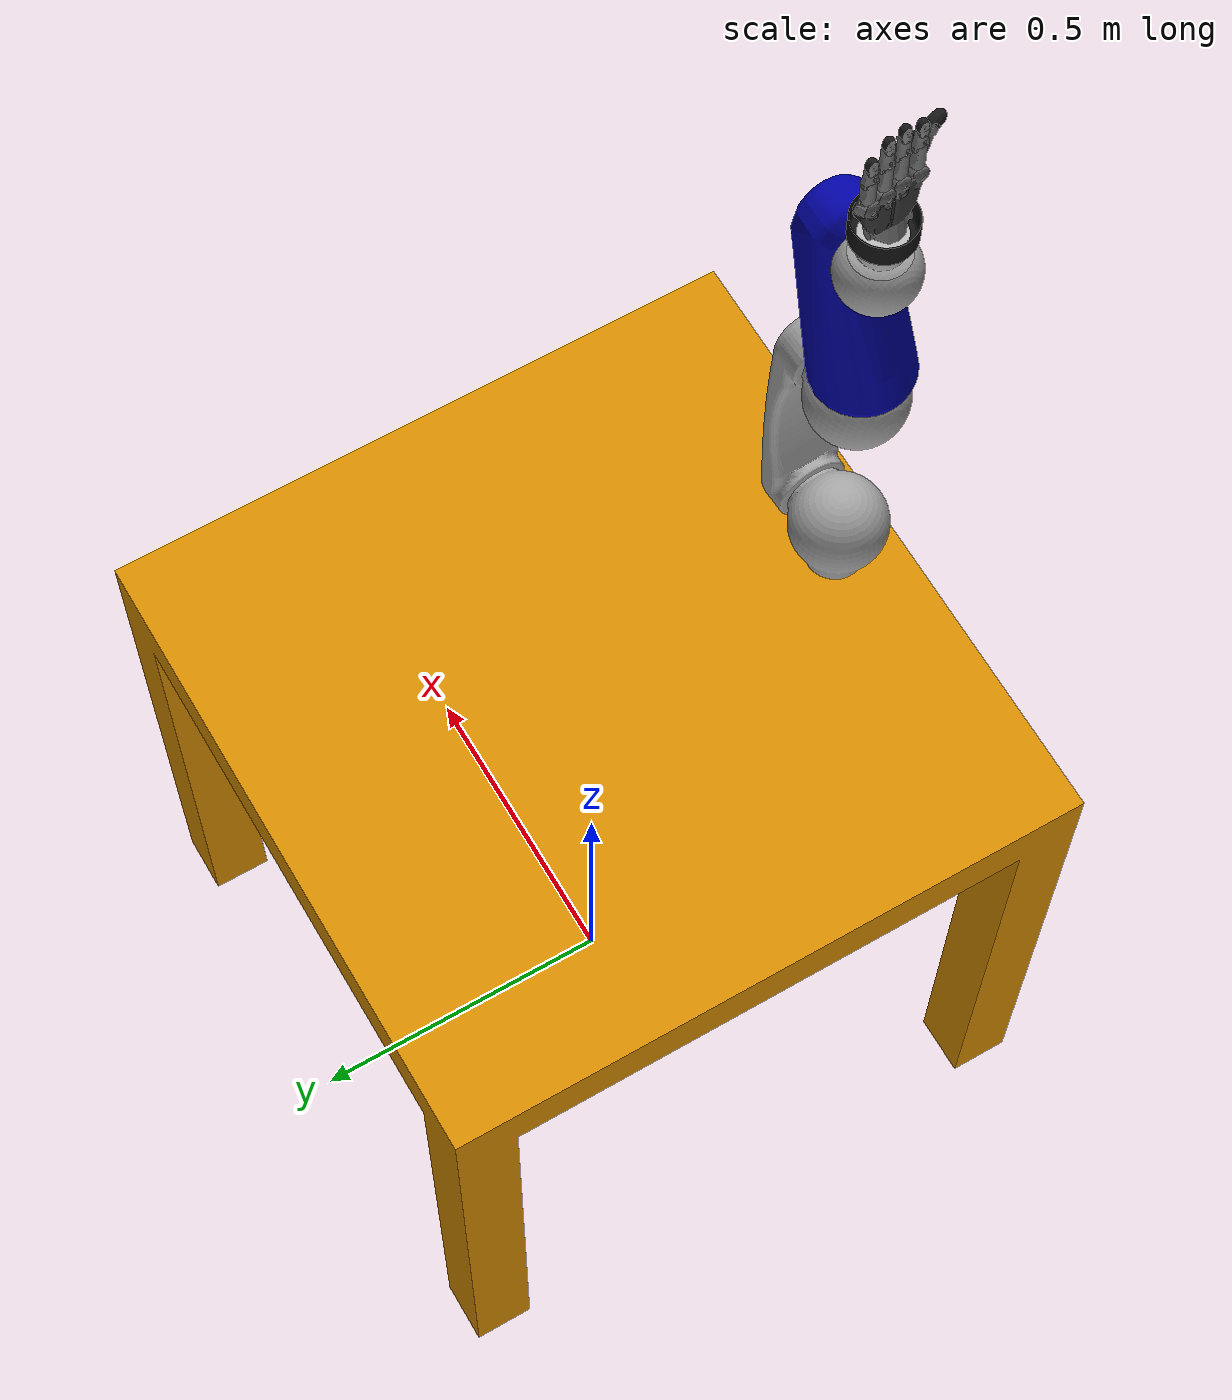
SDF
<sdf version="1.5">
 <model name="HoLLiE">
  <link name="base_link">
   <inertial>
    <mass>1000</mass>
    <inertia><ixx>100</ixx><ixy>0</ixy><ixz>1</ixz><iyy>100</iyy><iyz>1</iyz><izz>100</izz></inertia>
   </inertial>
   <collision name="base_link_collision">
    <pose>0 0 0.5 0 0 0</pose>
    <geometry>
     <mesh><scale>1 1 1</scale><uri>model://arm_robot-mit_VISCOL/collisions/COL_Table.dae</uri></mesh>
    </geometry>
   </collision>
   <collision name="base_link_collision_1">
    <pose>0 0 0.5 0 0 0</pose>
    <geometry>
     <mesh><scale>1 1 1</scale><uri>model://arm_robot-mit_VISCOL/collisions/COL_Table.001.dae</uri></mesh>
    </geometry>
   </collision>
   <collision name="base_link_collision_2">
    <pose>0 0 0.5 0 0 0</pose>
    <geometry>
     <mesh><scale>1 1 1</scale><uri>model://arm_robot-mit_VISCOL/collisions/COL_Table.000.dae</uri></mesh>
    </geometry>
   </collision>
   <visual name="base_link_visual">
    <pose>0 0 0.5 0 0 0</pose>
    <geometry>
     <mesh><scale>1 1 1</scale><uri>model://arm_robot-mit_VISCOL/meshes/VIS_Table.dae</uri></mesh>
    </geometry>
   </visual>
  </link>
  <link name="hollie_real_left_arm">
   <pose>0 -0.4 1 0 0 1.62316</pose>
   <inertial>
    <mass>0.29364</mass>
    <inertia><ixx>0.01</ixx><ixy>0</ixy><ixz>0</ixz><iyy>0.01</iyy><iyz>0</iyz><izz>0.01</izz></inertia>
   </inertial>
  </link>
  <joint name="hollie_real_left_arm_joint" type="prismatic">
   <child>hollie_real_left_arm</child>
   <parent>base_link</parent>
   <axis>
    <xyz>-0.0523359 0.99863 0</xyz>
    <limit><lower>0</lower><upper>0</upper><effort>1000</effort><velocity>1</velocity></limit>
    <dynamics>
     <damping>1</damping>
     <friction>0</friction>
     <spring_reference>0</spring_reference>
     <spring_stiffness>0</spring_stiffness>
    </dynamics>
    <use_parent_model_frame>1</use_parent_model_frame>
   </axis>
  </joint>
  <link name="hollie_real.000">
   <pose>0 -0.4 1.11 0 0 1.62316</pose>
   <inertial>
    <mass>0.29364</mass>
    <inertia><ixx>0.01</ixx><ixy>0</ixy><ixz>0</ixz><iyy>0.01</iyy><iyz>0</iyz><izz>0.01</izz></inertia>
   </inertial>
   <collision name="hollie_real.000_collision">
    <pose>3.51042e-08 9.9303e-08 1.19209e-06 0 0 0</pose>
    <geometry>
     <mesh><scale>1 1 1</scale><uri>model://arm_robot-mit_VISCOL/collisions/COL_hollie_real.000.dae</uri></mesh>
    </geometry>
   </collision>
   <visual name="hollie_real.000_visual">
    <pose>3.51042e-08 9.9303e-08 1.19209e-06 -2.10125e-07 1.15808e-08 -1.56462e-07</pose>
    <geometry>
     <mesh><scale>1 1 1</scale><uri>model://arm_robot-mit_VISCOL/meshes/VIS_hollie_real.000.dae</uri></mesh>
    </geometry>
   </visual>
  </link>
  <joint name="hollie_real_left_arm_1_joint" type="revolute">
   <child>hollie_real.000</child>
   <parent>hollie_real_left_arm</parent>
   <axis>
    <xyz>0 0 1</xyz>
    <limit>
     <lower>-1.37255e+20</lower>
     <upper>1.37255e+20</upper>
     <effort>1000</effort>
     <velocity>10</velocity>
    </limit>
    <dynamics>
     <damping>1</damping>
     <friction>0</friction>
     <spring_reference>0</spring_reference>
     <spring_stiffness>0</spring_stiffness>
    </dynamics>
    <use_parent_model_frame>1</use_parent_model_frame>
   </axis>
  </joint>
  <link name="hollie_real.001">
   <pose>0 -0.4 1.11 1.5708 0 1.62316</pose>
   <inertial>
    <mass>1.68311</mass>
    <inertia><ixx>0.03</ixx><ixy>0</ixy><ixz>0</ixz><iyy>0.03</iyy><iyz>0</iyz><izz>0.03</izz></inertia>
   </inertial>
   <collision name="hollie_real.001_collision">
    <pose>-2.54185e-08 1.432e-06 -4.74719e-09 0 0 0</pose>
    <geometry>
     <mesh><scale>1 1 1</scale><uri>model://arm_robot-mit_VISCOL/collisions/COL_hollie_real.001.dae</uri></mesh>
    </geometry>
   </collision>
   <visual name="hollie_real.001_visual">
    <pose>-2.54185e-08 1.432e-06 -4.74719e-09 -7.54979e-08 4.84288e-08 5.42987e-08</pose>
    <geometry>
     <mesh><scale>1 1 1</scale><uri>model://arm_robot-mit_VISCOL/meshes/VIS_hollie_real.001.dae</uri></mesh>
    </geometry>
   </visual>
  </link>
  <joint name="hollie_real_left_arm_2_joint" type="revolute">
   <child>hollie_real.001</child>
   <parent>hollie_real.000</parent>
   <axis>
    <xyz>0.99863 0.0523359 -4.37114e-08</xyz>
    <limit><lower>-2864.79</lower><upper>2864.79</upper><effort>1000</effort><velocity>1</velocity></limit>
    <dynamics>
     <damping>1</damping>
     <friction>0</friction>
     <spring_reference>0</spring_reference>
     <spring_stiffness>0</spring_stiffness>
    </dynamics>
    <use_parent_model_frame>1</use_parent_model_frame>
   </axis>
  </joint>
  <link name="hollie_real.002">
   <pose>1.5278e-08 -0.4 1.46 1.5708 6.77236e-15 -1.51844</pose>
   <inertial>
    <mass>2.1</mass>
    <inertia><ixx>0.03</ixx><ixy>0</ixy><ixz>0</ixz><iyy>0.03</iyy><iyz>0</iyz><izz>0.03</izz></inertia>
   </inertial>
   <collision name="hollie_real.002_collision">
    <pose>-1.55538e-07 9.55162e-07 1.14359e-08 0 0 0</pose>
    <geometry>
     <mesh><scale>1 1 1</scale><uri>model://arm_robot-mit_VISCOL/collisions/COL_hollie_real.002.dae</uri></mesh>
    </geometry>
   </collision>
   <visual name="hollie_real.002_visual">
    <pose>-1.55538e-07 9.55162e-07 1.14359e-08 4.37113e-08 4.09782e-07 -1.73467e-07</pose>
    <geometry>
     <mesh><scale>1 1 1</scale><uri>model://arm_robot-mit_VISCOL/meshes/VIS_hollie_real.002.dae</uri></mesh>
    </geometry>
   </visual>
  </link>
  <joint name="hollie_real_left_arm_3_joint" type="revolute">
   <child>hollie_real.002</child>
   <parent>hollie_real.001</parent>
   <axis>
    <xyz>-0.99863 -0.0523361 4.37114e-08</xyz>
    <limit>
     <lower>-1.36749e+20</lower>
     <upper>1.36749e+20</upper>
     <effort>1000</effort>
     <velocity>10</velocity>
    </limit>
    <dynamics>
     <damping>1</damping>
     <friction>0</friction>
     <spring_reference>0</spring_reference>
     <spring_stiffness>0</spring_stiffness>
    </dynamics>
    <use_parent_model_frame>1</use_parent_model_frame>
   </axis>
  </joint>
  <link name="hollie_real.003">
   <pose>1.5278e-08 -0.4 1.46 8.74228e-08 -1.50996e-07 1.62316</pose>
   <inertial>
    <mass>1.68311</mass>
    <inertia><ixx>0.1</ixx><ixy>0.1</ixy><ixz>0.1</ixz><iyy>0.1</iyy><iyz>0.1</iyz><izz>0.1</izz></inertia>
   </inertial>
   <collision name="hollie_real.003_collision">
    <pose>5.1084e-08 -1.46347e-07 1.74725e-07 0 0 0</pose>
    <geometry>
     <mesh><scale>1 1 1</scale><uri>model://arm_robot-mit_VISCOL/collisions/COL_hollie_real.003.dae</uri></mesh>
    </geometry>
   </collision>
   <visual name="hollie_real.003_visual">
    <pose>5.1084e-08 -1.46347e-07 1.74725e-07 1.54785e-07 3.0945e-09 -2.12342e-07</pose>
    <geometry>
     <mesh><scale>1 1 1</scale><uri>model://arm_robot-mit_VISCOL/meshes/VIS_hollie_real.003.dae</uri></mesh>
    </geometry>
   </visual>
  </link>
  <joint name="hollie_real_left_arm_4_joint" type="revolute">
   <child>hollie_real.003</child>
   <parent>hollie_real.002</parent>
   <axis>
    <xyz>9.52055e-08 -1.46214e-07 1</xyz>
    <limit>
     <lower>-4.52188e+19</lower>
     <upper>4.52188e+19</upper>
     <effort>1000</effort>
     <velocity>10</velocity>
    </limit>
    <dynamics>
     <damping>1</damping>
     <friction>0</friction>
     <spring_reference>0</spring_reference>
     <spring_stiffness>0</spring_stiffness>
    </dynamics>
    <use_parent_model_frame>1</use_parent_model_frame>
   </axis>
  </joint>
  <link name="hollie_real.004">
   <pose>-0.00525574 -0.400275 1.765 1.5708 1.50996e-07 -1.51844</pose>
   <inertial>
    <mass>0.807</mass>
    <inertia><ixx>0.03</ixx><ixy>0</ixy><ixz>0</ixz><iyy>0.03</iyy><iyz>0</iyz><izz>0.03</izz></inertia>
   </inertial>
   <collision name="hollie_real.004_collision">
    <pose>-1.87833e-07 6.52579e-07 -6.23986e-08 0 0 0</pose>
    <geometry>
     <mesh><scale>1 1 1</scale><uri>model://arm_robot-mit_VISCOL/collisions/COL_hollie_real.004.dae</uri></mesh>
    </geometry>
   </collision>
   <visual name="hollie_real.004_visual">
    <pose>-1.87833e-07 6.52579e-07 -6.23986e-08 1.47422e-06 -1.69501e-06 -1.44053e-07</pose>
    <geometry>
     <mesh><scale>1 1 1</scale><uri>model://arm_robot-mit_VISCOL/meshes/VIS_hollie_real.004.dae</uri></mesh>
    </geometry>
   </visual>
  </link>
  <joint name="hollie_real_left_arm_5_joint" type="revolute">
   <child>hollie_real.004</child>
   <parent>hollie_real.003</parent>
   <axis>
    <xyz>-0.99863 -0.0523362 4.37114e-08</xyz>
    <limit>
     <lower>-1.36749e+20</lower>
     <upper>1.36749e+20</upper>
     <effort>1000</effort>
     <velocity>1</velocity>
    </limit>
    <dynamics>
     <damping>1</damping>
     <friction>0</friction>
     <spring_reference>0</spring_reference>
     <spring_stiffness>0</spring_stiffness>
    </dynamics>
    <use_parent_model_frame>1</use_parent_model_frame>
   </axis>
  </joint>
  <link name="hollie_real.005">
   <pose>-0.00525574 -0.400275 1.765 -8.74228e-08 1.50996e-07 -1.51844</pose>
   <inertial>
    <mass>0.819</mass>
    <inertia><ixx>0.01</ixx><ixy>0</ixy><ixz>0</ixz><iyy>0.01</iyy><iyz>0</iyz><izz>0.01</izz></inertia>
   </inertial>
   <collision name="hollie_real.005_collision">
    <pose>-4.52224e-08 3.3062e-07 1.35905e-06 0 0 0</pose>
    <geometry>
     <mesh><scale>1 1 1</scale><uri>model://arm_robot-mit_VISCOL/collisions/COL_hollie_real.005.dae</uri></mesh>
    </geometry>
   </collision>
   <visual name="hollie_real.005_visual">
    <pose>-4.52224e-08 3.3062e-07 1.35905e-06 1.28805e-07 -3.81088e-11 4.54485e-07</pose>
    <geometry>
     <mesh><scale>1 1 1</scale><uri>model://arm_robot-mit_VISCOL/meshes/VIS_hollie_real.005.dae</uri></mesh>
    </geometry>
   </visual>
  </link>
  <joint name="hollie_real_left_arm_6_joint" type="revolute">
   <child>hollie_real.005</child>
   <parent>hollie_real.004</parent>
   <axis>
    <xyz>9.52055e-08 -1.46214e-07 1</xyz>
    <limit>
     <lower>-4.52188e+19</lower>
     <upper>4.52188e+19</upper>
     <effort>1000</effort>
     <velocity>1</velocity>
    </limit>
    <dynamics>
     <damping>1</damping>
     <friction>0</friction>
     <spring_reference>0</spring_reference>
     <spring_stiffness>0</spring_stiffness>
    </dynamics>
    <use_parent_model_frame>1</use_parent_model_frame>
   </axis>
  </joint>
  <link name="hollie_real.006">
   <pose>-0.00525573 -0.400276 1.865 -8.74228e-08 1.50996e-07 -1.51844</pose>
   <inertial>
    <mass>0.00001</mass>
    <inertia><ixx>0.01</ixx><ixy>0</ixy><ixz>0</ixz><iyy>0.01</iyy><iyz>0</iyz><izz>0.01</izz></inertia>
   </inertial>
   <collision name="hollie_real.006_collision">
    <pose>-1.68576e-07 9.89996e-07 -0.0319981 0 0 0</pose>
    <geometry>
     <mesh><scale>1 1 1</scale><uri>model://arm_robot-mit_VISCOL/collisions/COL_hollie_real.006.dae</uri></mesh>
    </geometry>
   </collision>
   <visual name="hollie_real.006_visual">
    <pose>-1.68576e-07 9.89996e-07 -0.0319981 -5.19103e-08 -7.89563e-10 2.16067e-07</pose>
    <geometry>
     <mesh><scale>1 1 1</scale><uri>model://arm_robot-mit_VISCOL/meshes/VIS_hollie_real.006.dae</uri></mesh>
    </geometry>
   </visual>
  </link>
  <joint name="hollie_real_left_hand_base_joint" type="prismatic">
   <child>hollie_real.006</child>
   <parent>hollie_real.005</parent>
   <axis>
    <xyz>0.0523362 -0.99863 -1.50996e-07</xyz>
    <limit><lower>0</lower><upper>0</upper><effort>1000</effort><velocity>1</velocity></limit>
    <dynamics>
     <damping>1</damping>
     <friction>0</friction>
     <spring_reference>0</spring_reference>
     <spring_stiffness>0</spring_stiffness>
    </dynamics>
    <use_parent_model_frame>1</use_parent_model_frame>
   </axis>
  </joint>
  <link name="hollie_real.007">
   <pose>-0.0183677 -0.400963 1.865 -8.74228e-08 1.50996e-07 -1.51844</pose>
   <inertial>
    <mass>0.00001</mass>
    <inertia><ixx>0.01</ixx><ixy>0</ixy><ixz>0</ixz><iyy>0.01</iyy><iyz>0</iyz><izz>0.01</izz></inertia>
   </inertial>
   <collision name="hollie_real.007_collision">
    <pose>-6.60936e-08 0.0131302 2.0743e-06 0 0 0</pose>
    <geometry>
     <mesh><scale>1 1 1</scale><uri>model://arm_robot-mit_VISCOL/collisions/COL_hollie_real.007.dae</uri></mesh>
    </geometry>
   </collision>
   <visual name="hollie_real.007_visual">
    <pose>-6.60936e-08 0.0131302 2.0743e-06 3.14159 2.29074e-07 -6.18398e-07</pose>
    <geometry>
     <mesh><scale>1 1 1</scale><uri>model://arm_robot-mit_VISCOL/meshes/VIS_hollie_real.007.dae</uri></mesh>
    </geometry>
   </visual>
  </link>
  <joint name="hollie_real_left_hand_f4" type="prismatic">
   <child>hollie_real.007</child>
   <parent>hollie_real.006</parent>
   <axis>
    <xyz>0.0523362 -0.99863 -1.50996e-07</xyz>
    <limit><lower>0</lower><upper>0</upper><effort>1000</effort><velocity>1</velocity></limit>
    <dynamics>
     <damping>1</damping>
     <friction>0</friction>
     <spring_reference>0</spring_reference>
     <spring_stiffness>0</spring_stiffness>
    </dynamics>
    <use_parent_model_frame>1</use_parent_model_frame>
   </axis>
  </joint>
  <link name="hollie_real.008">
   <pose>0.00874075 -0.416465 1.865 1.56322e-07 0.261799 0.0523602</pose>
   <inertial>
    <mass>0.00001</mass>
    <inertia><ixx>0.01</ixx><ixy>0</ixy><ixz>0</ixz><iyy>0.01</iyy><iyz>0</iyz><izz>0.01</izz></inertia>
   </inertial>
   <collision name="hollie_real.008_collision">
    <pose>2.58908e-07 -7.39136e-07 0.0244181 0 0 0</pose>
    <geometry>
     <mesh><scale>1 1 1</scale><uri>model://arm_robot-mit_VISCOL/collisions/COL_hollie_real.008.dae</uri></mesh>
    </geometry>
   </collision>
   <visual name="hollie_real.008_visual">
    <pose>2.58908e-07 -7.39136e-07 0.0244181 3.14159 2.7736e-06 3.14159</pose>
    <geometry>
     <mesh><scale>1 1 1</scale><uri>model://arm_robot-mit_VISCOL/meshes/VIS_hollie_real.008.dae</uri></mesh>
    </geometry>
   </visual>
  </link>
  <joint name="hollie_real_left_hand_Thumb_Opposition" type="revolute">
   <child>hollie_real.008</child>
   <parent>hollie_real.007</parent>
   <axis>
    <xyz>0.258464 0.0135455 0.965926</xyz>
    <limit><lower>0</lower><upper>2.15805e+19</upper><effort>1000</effort><velocity>1</velocity></limit>
    <dynamics>
     <damping>1</damping>
     <friction>0</friction>
     <spring_reference>0</spring_reference>
     <spring_stiffness>0</spring_stiffness>
    </dynamics>
    <use_parent_model_frame>1</use_parent_model_frame>
   </axis>
  </joint>
  <link name="hollie_real_left_hand_Thumb_Helper_link">
   <pose>0.0206198 -0.415843 1.90939 -3.14159 -1.309 0.0523596</pose>
   <inertial>
    <mass>0.00001</mass>
    <inertia><ixx>0.01</ixx><ixy>0</ixy><ixz>0</ixz><iyy>0.01</iyy><iyz>0</iyz><izz>0.01</izz></inertia>
   </inertial>
  </link>
  <joint name="hollie_real_left_hand_Thumb_Helper" type="prismatic">
   <child>hollie_real_left_hand_Thumb_Helper_link</child>
   <parent>hollie_real.008</parent>
   <axis>
    <xyz>0.258465 0.0135455 0.965926</xyz>
    <limit><lower>0</lower><upper>0</upper><effort>1000</effort><velocity>1</velocity></limit>
    <dynamics>
     <damping>1</damping>
     <friction>0</friction>
     <spring_reference>0</spring_reference>
     <spring_stiffness>0</spring_stiffness>
    </dynamics>
    <use_parent_model_frame>1</use_parent_model_frame>
   </axis>
  </joint>
  <link name="hollie_real.009">
   <pose>0.0206198 -0.415843 1.90939 -1.8834 -0.570602 -1.3456</pose>
   <inertial>
    <mass>0.00001</mass>
    <inertia><ixx>0.01</ixx><ixy>0</ixy><ixz>0</ixz><iyy>0.01</iyy><iyz>0</iyz><izz>0.01</izz></inertia>
   </inertial>
   <collision name="hollie_real.009_collision">
    <pose>1.18185e-06 1.32481e-07 -2.5332e-07 0 0 0</pose>
    <geometry>
     <mesh><scale>1 1 1</scale><uri>model://arm_robot-mit_VISCOL/collisions/COL_hollie_real.009.dae</uri></mesh>
    </geometry>
   </collision>
   <visual name="hollie_real.009_visual">
    <pose>1.18185e-06 1.32481e-07 -2.5332e-07 -3.14159 3.241e-07 1.06171e-06</pose>
    <geometry>
     <mesh><scale>1 1 1</scale><uri>model://arm_robot-mit_VISCOL/meshes/VIS_hollie_real.009.dae</uri></mesh>
    </geometry>
   </visual>
  </link>
  <joint name="hollie_real_left_hand_Thumb_Flexion" type="revolute">
   <child>hollie_real.009</child>
   <parent>hollie_real_left_hand_Thumb_Helper_link</parent>
   <axis>
    <xyz>0.964602 0.0505532 -0.258819</xyz>
    <limit><lower>-5</lower><upper>2.11982e+19</upper><effort>1000</effort><velocity>1</velocity></limit>
    <dynamics>
     <damping>1</damping>
     <friction>0</friction>
     <spring_reference>0</spring_reference>
     <spring_stiffness>0</spring_stiffness>
    </dynamics>
    <use_parent_model_frame>1</use_parent_model_frame>
   </axis>
  </joint>
  <link name="hollie_real.010">
   <pose>0.0297339 -0.455628 1.93559 -1.8834 -0.570602 -1.3456</pose>
   <inertial>
    <mass>0.00001</mass>
    <inertia><ixx>0.01</ixx><ixy>0</ixy><ixz>0</ixz><iyy>0.01</iyy><iyz>0</iyz><izz>0.01</izz></inertia>
   </inertial>
   <collision name="hollie_real.010_collision">
    <pose>-6.49597e-07 -1.02399e-06 4.787e-07 0 0 0</pose>
    <geometry>
     <mesh><scale>1 1 1</scale><uri>model://arm_robot-mit_VISCOL/collisions/COL_hollie_real.010.dae</uri></mesh>
    </geometry>
   </collision>
   <visual name="hollie_real.010_visual">
    <pose>-6.49597e-07 -1.02399e-06 4.787e-07 3.14159 -1.11759e-08 1.9148e-06</pose>
    <geometry>
     <mesh><scale>1 1 1</scale><uri>model://arm_robot-mit_VISCOL/meshes/VIS_hollie_real.010.dae</uri></mesh>
    </geometry>
   </visual>
  </link>
  <joint name="hollie_real_left_hand_j3" type="revolute">
   <child>hollie_real.010</child>
   <parent>hollie_real.009</parent>
   <axis>
    <xyz>0.964602 0.0505532 -0.258819</xyz>
    <limit><lower>-5</lower><upper>0</upper><effort>1000</effort><velocity>1</velocity></limit>
    <dynamics>
     <damping>1</damping>
     <friction>0</friction>
     <spring_reference>0</spring_reference>
     <spring_stiffness>0</spring_stiffness>
    </dynamics>
    <use_parent_model_frame>1</use_parent_model_frame>
   </axis>
  </joint>
  <link name="hollie_real.011">
   <pose>0.0353715 -0.480238 1.95179 -1.8834 -0.570602 -1.3456</pose>
   <inertial>
    <mass>0.00001</mass>
    <inertia><ixx>0.01</ixx><ixy>0</ixy><ixz>0</ixz><iyy>0.01</iyy><iyz>0</iyz><izz>0.01</izz></inertia>
   </inertial>
   <collision name="hollie_real.011_collision">
    <pose>-7.49715e-08 -2.47732e-07 -7.45058e-08 0 0 0</pose>
    <geometry>
     <mesh><scale>1 1 1</scale><uri>model://arm_robot-mit_VISCOL/collisions/COL_hollie_real.011.dae</uri></mesh>
    </geometry>
   </collision>
   <visual name="hollie_real.011_visual">
    <pose>-7.49715e-08 -2.47732e-07 -7.45058e-08 3.14159 4.84288e-08 1.67266e-06</pose>
    <geometry>
     <mesh><scale>1 1 1</scale><uri>model://arm_robot-mit_VISCOL/meshes/VIS_hollie_real.011.dae</uri></mesh>
    </geometry>
   </visual>
  </link>
  <joint name="hollie_real_left_hand_j4" type="revolute">
   <child>hollie_real.011</child>
   <parent>hollie_real.010</parent>
   <axis>
    <xyz>0.964602 0.0505532 -0.258819</xyz>
    <limit><lower>0</lower><upper>3.07139e+19</upper><effort>1000</effort><velocity>1</velocity></limit>
    <dynamics>
     <damping>1</damping>
     <friction>0</friction>
     <spring_reference>0</spring_reference>
     <spring_stiffness>0</spring_stiffness>
    </dynamics>
    <use_parent_model_frame>1</use_parent_model_frame>
   </axis>
  </joint>
  <link name="hollie_real_left_hand_f1_link">
   <pose>-0.0183677 -0.400963 1.865 -8.74228e-08 1.50996e-07 -1.51844</pose>
   <inertial>
    <mass>0.00001</mass>
    <inertia><ixx>0.01</ixx><ixy>0</ixy><ixz>0</ixz><iyy>0.01</iyy><iyz>0</iyz><izz>0.01</izz></inertia>
   </inertial>
  </link>
  <joint name="hollie_real_left_hand_f1" type="prismatic">
   <child>hollie_real_left_hand_f1_link</child>
   <parent>hollie_real.007</parent>
   <axis>
    <xyz>0.0523362 -0.99863 -1.50996e-07</xyz>
    <limit><lower>0</lower><upper>0</upper><effort>1000</effort><velocity>1</velocity></limit>
    <dynamics>
     <damping>1</damping>
     <friction>0</friction>
     <spring_reference>0</spring_reference>
     <spring_stiffness>0</spring_stiffness>
    </dynamics>
    <use_parent_model_frame>1</use_parent_model_frame>
   </axis>
  </joint>
  <link name="hollie_real_left_hand_f2_link">
   <pose>-0.0183677 -0.400963 1.865 -8.74228e-08 1.50996e-07 -1.51844</pose>
   <inertial>
    <mass>0.00001</mass>
    <inertia><ixx>0.01</ixx><ixy>0</ixy><ixz>0</ixz><iyy>0.01</iyy><iyz>0</iyz><izz>0.01</izz></inertia>
   </inertial>
  </link>
  <joint name="hollie_real_left_hand_f2" type="prismatic">
   <child>hollie_real_left_hand_f2_link</child>
   <parent>hollie_real_left_hand_f1_link</parent>
   <axis>
    <xyz>0.0523362 -0.99863 -1.50996e-07</xyz>
    <limit><lower>0</lower><upper>0</upper><effort>1000</effort><velocity>1</velocity></limit>
    <dynamics>
     <damping>1</damping>
     <friction>0</friction>
     <spring_reference>0</spring_reference>
     <spring_stiffness>0</spring_stiffness>
    </dynamics>
    <use_parent_model_frame>1</use_parent_model_frame>
   </axis>
  </joint>
  <link name="hollie_real_left_hand_f3_link">
   <pose>-0.0183677 -0.400963 1.865 -8.74228e-08 1.50996e-07 -1.51844</pose>
   <inertial>
    <mass>0.00001</mass>
    <inertia><ixx>0.01</ixx><ixy>0</ixy><ixz>0</ixz><iyy>0.01</iyy><iyz>0</iyz><izz>0.01</izz></inertia>
   </inertial>
  </link>
  <joint name="hollie_real_left_hand_f3" type="prismatic">
   <child>hollie_real_left_hand_f3_link</child>
   <parent>hollie_real_left_hand_f2_link</parent>
   <axis>
    <xyz>0.0523362 -0.99863 -1.50996e-07</xyz>
    <limit><lower>0</lower><upper>0</upper><effort>1000</effort><velocity>1</velocity></limit>
    <dynamics>
     <damping>1</damping>
     <friction>0</friction>
     <spring_reference>0</spring_reference>
     <spring_stiffness>0</spring_stiffness>
    </dynamics>
    <use_parent_model_frame>1</use_parent_model_frame>
   </axis>
  </joint>
  <link name="hollie_real.012">
   <pose>-0.0170593 -0.425928 1.975 -1.93916 -1.57079 1.99152</pose>
   <inertial>
    <mass>0.00001</mass>
    <inertia><ixx>0.01</ixx><ixy>0</ixy><ixz>0</ixz><iyy>0.01</iyy><iyz>0</iyz><izz>0.01</izz></inertia>
   </inertial>
   <collision name="hollie_real.012_collision">
    <pose>2.83714e-07 -1.80779e-07 0.0132102 0 0 0</pose>
    <geometry>
     <mesh><scale>1 1 1</scale><uri>model://arm_robot-mit_VISCOL/collisions/COL_hollie_real.012.dae</uri></mesh>
    </geometry>
   </collision>
   <visual name="hollie_real.012_visual">
    <pose>2.83714e-07 -1.80779e-07 0.0132102 3.72529e-09 4.7521e-07 9.03022e-08</pose>
    <geometry>
     <mesh><scale>1 1 1</scale><uri>model://arm_robot-mit_VISCOL/meshes/VIS_hollie_real.012.dae</uri></mesh>
    </geometry>
   </visual>
  </link>
  <joint name="hollie_real_left_hand_index_spread" type="revolute">
   <child>hollie_real.012</child>
   <parent>hollie_real_left_hand_f3_link</parent>
   <axis>
    <xyz>-0.99863 -0.0523363 8.74227e-08</xyz>
    <limit><lower>0</lower><upper>6.29852e+18</upper><effort>1000</effort><velocity>1</velocity></limit>
    <dynamics>
     <damping>1</damping>
     <friction>0</friction>
     <spring_reference>0</spring_reference>
     <spring_stiffness>0</spring_stiffness>
    </dynamics>
    <use_parent_model_frame>1</use_parent_model_frame>
   </axis>
  </joint>
  <link name="hollie_real.013">
   <pose>-0.0170593 -0.425928 1.975 2.77323 -1.57079 1.99152</pose>
   <inertial>
    <mass>0.00001</mass>
    <inertia><ixx>0.01</ixx><ixy>0</ixy><ixz>0</ixz><iyy>0.01</iyy><iyz>0</iyz><izz>0.01</izz></inertia>
   </inertial>
   <collision name="hollie_real.013_collision">
    <pose>-5.68574e-07 4.89691e-08 1.02218e-07 0 0 0</pose>
    <geometry>
     <mesh><scale>1 1 1</scale><uri>model://arm_robot-mit_VISCOL/collisions/COL_hollie_real.013.dae</uri></mesh>
    </geometry>
   </collision>
   <visual name="hollie_real.013_visual">
    <pose>-5.68574e-07 4.89691e-08 1.02218e-07 -2.77162e-06 -6.43156e-08 7.5231e-08</pose>
    <geometry>
     <mesh><scale>1 1 1</scale><uri>model://arm_robot-mit_VISCOL/meshes/VIS_hollie_real.013.dae</uri></mesh>
    </geometry>
   </visual>
  </link>
  <joint name="hollie_real_left_hand_Index_Finger_Proximal" type="revolute">
   <child>hollie_real.013</child>
   <parent>hollie_real.012</parent>
   <axis>
    <xyz>-0.0523362 0.99863 2.26494e-07</xyz>
    <limit><lower>0</lower><upper>1.74429e+19</upper><effort>1000</effort><velocity>1</velocity></limit>
    <dynamics>
     <damping>1</damping>
     <friction>0</friction>
     <spring_reference>0</spring_reference>
     <spring_stiffness>0</spring_stiffness>
    </dynamics>
    <use_parent_model_frame>1</use_parent_model_frame>
   </axis>
  </joint>
  <link name="hollie_real.014">
   <pose>-0.0170593 -0.425928 2.02304 2.77323 -1.57079 1.99152</pose>
   <inertial>
    <mass>0.00001</mass>
    <inertia><ixx>0.01</ixx><ixy>0</ixy><ixz>0</ixz><iyy>0.01</iyy><iyz>0</iyz><izz>0.01</izz></inertia>
   </inertial>
   <collision name="hollie_real.014_collision">
    <pose>-2.52321e-08 -3.56398e-07 4.70136e-08 0 0 0</pose>
    <geometry>
     <mesh><scale>1 1 1</scale><uri>model://arm_robot-mit_VISCOL/collisions/COL_hollie_real.014.dae</uri></mesh>
    </geometry>
   </collision>
   <visual name="hollie_real.014_visual">
    <pose>-2.52321e-08 -3.56398e-07 4.70136e-08 -2.40654e-06 4.62315e-08 7.50677e-08</pose>
    <geometry>
     <mesh><scale>1 1 1</scale><uri>model://arm_robot-mit_VISCOL/meshes/VIS_hollie_real.014.dae</uri></mesh>
    </geometry>
   </visual>
  </link>
  <joint name="hollie_real_left_hand_Index_Finger_Distal" type="revolute">
   <child>hollie_real.014</child>
   <parent>hollie_real.013</parent>
   <axis>
    <xyz>-0.0523362 0.99863 2.26494e-07</xyz>
    <limit><lower>0</lower><upper>2.9141e+19</upper><effort>1000</effort><velocity>1</velocity></limit>
    <dynamics>
     <damping>1</damping>
     <friction>0</friction>
     <spring_reference>0</spring_reference>
     <spring_stiffness>0</spring_stiffness>
    </dynamics>
    <use_parent_model_frame>1</use_parent_model_frame>
   </axis>
  </joint>
  <link name="hollie_real.015">
   <pose>-0.0170593 -0.425928 2.04904 2.77323 -1.57079 1.99152</pose>
   <inertial>
    <mass>0.00001</mass>
    <inertia><ixx>0.01</ixx><ixy>0</ixy><ixz>0</ixz><iyy>0.01</iyy><iyz>0</iyz><izz>0.01</izz></inertia>
   </inertial>
   <collision name="hollie_real.015_collision">
    <pose>-2.63651e-07 1.04846e-07 -3.66848e-07 0 0 0</pose>
    <geometry>
     <mesh><scale>1 1 1</scale><uri>model://arm_robot-mit_VISCOL/collisions/COL_hollie_real.015.dae</uri></mesh>
    </geometry>
   </collision>
   <visual name="hollie_real.015_visual">
    <pose>-2.63651e-07 1.04846e-07 -3.66848e-07 -2.77162e-06 3.99925e-08 -4.39782e-08</pose>
    <geometry>
     <mesh><scale>1 1 1</scale><uri>model://arm_robot-mit_VISCOL/meshes/VIS_hollie_real.015.dae</uri></mesh>
    </geometry>
   </visual>
  </link>
  <joint name="hollie_real_left_hand_j14" type="revolute">
   <child>hollie_real.015</child>
   <parent>hollie_real.014</parent>
   <axis>
    <xyz>-0.0523362 0.99863 2.26494e-07</xyz>
    <limit><lower>0</lower><upper>3.04517e+19</upper><effort>1000</effort><velocity>1</velocity></limit>
    <dynamics>
     <damping>1</damping>
     <friction>0</friction>
     <spring_reference>0</spring_reference>
     <spring_stiffness>0</spring_stiffness>
    </dynamics>
    <use_parent_model_frame>1</use_parent_model_frame>
   </axis>
  </joint>
  <link name="hollie_real.016">
   <pose>-0.0183677 -0.400963 1.975 -1.93916 -1.57079 1.99152</pose>
   <inertial>
    <mass>0.00001</mass>
    <inertia><ixx>0.01</ixx><ixy>0</ixy><ixz>0</ixz><iyy>0.01</iyy><iyz>0</iyz><izz>0.01</izz></inertia>
   </inertial>
   <collision name="hollie_real.016_collision">
    <pose>-8.03676e-08 -9.82228e-07 0.0132101 0 0 0</pose>
    <geometry>
     <mesh><scale>1 1 1</scale><uri>model://arm_robot-mit_VISCOL/collisions/COL_hollie_real.016.dae</uri></mesh>
    </geometry>
   </collision>
   <visual name="hollie_real.016_visual">
    <pose>-8.03676e-08 -9.82228e-07 0.0132101 1.19209e-07 3.48713e-07 9.65411e-08</pose>
    <geometry>
     <mesh><scale>1 1 1</scale><uri>model://arm_robot-mit_VISCOL/meshes/VIS_hollie_real.016.dae</uri></mesh>
    </geometry>
   </visual>
  </link>
  <joint name="hollie_real_left_hand_middle_spread_dummy" type="prismatic">
   <child>hollie_real.016</child>
   <parent>hollie_real_left_hand_f1_link</parent>
   <axis>
    <xyz>9.91568e-08 -2.21608e-07 1</xyz>
    <limit><lower>0</lower><upper>0</upper><effort>1000</effort><velocity>1</velocity></limit>
    <dynamics>
     <damping>1</damping>
     <friction>0</friction>
     <spring_reference>0</spring_reference>
     <spring_stiffness>0</spring_stiffness>
    </dynamics>
    <use_parent_model_frame>1</use_parent_model_frame>
   </axis>
  </joint>
  <link name="hollie_real.017">
   <pose>-0.0183677 -0.400963 1.975 2.77323 -1.57079 1.99152</pose>
   <inertial>
    <mass>0.00001</mass>
    <inertia><ixx>0.01</ixx><ixy>0</ixy><ixz>0</ixz><iyy>0.01</iyy><iyz>0</iyz><izz>0.01</izz></inertia>
   </inertial>
   <collision name="hollie_real.017_collision">
    <pose>-9.40693e-08 1.18073e-07 -6.55762e-07 0 0 0</pose>
    <geometry>
     <mesh><scale>1 1 1</scale><uri>model://arm_robot-mit_VISCOL/collisions/COL_hollie_real.017.dae</uri></mesh>
    </geometry>
   </collision>
   <visual name="hollie_real.017_visual">
    <pose>-9.40693e-08 1.18073e-07 -6.55762e-07 5.81145e-07 -5.80766e-08 1.94277e-07</pose>
    <geometry>
     <mesh><scale>1 1 1</scale><uri>model://arm_robot-mit_VISCOL/meshes/VIS_hollie_real.017.dae</uri></mesh>
    </geometry>
   </visual>
  </link>
  <joint name="hollie_real_left_hand_Middle_Finger_Proximal" type="revolute">
   <child>hollie_real.017</child>
   <parent>hollie_real.016</parent>
   <axis>
    <xyz>-0.0523362 0.99863 2.26494e-07</xyz>
    <limit><lower>0</lower><upper>1.74429e+19</upper><effort>1000</effort><velocity>1</velocity></limit>
    <dynamics>
     <damping>1</damping>
     <friction>0</friction>
     <spring_reference>0</spring_reference>
     <spring_stiffness>0</spring_stiffness>
    </dynamics>
    <use_parent_model_frame>1</use_parent_model_frame>
   </axis>
  </joint>
  <link name="hollie_real.018">
   <pose>-0.0183677 -0.400963 2.02504 2.77323 -1.57079 1.99152</pose>
   <inertial>
    <mass>0.00001</mass>
    <inertia><ixx>0.01</ixx><ixy>0</ixy><ixz>0</ixz><iyy>0.01</iyy><iyz>0</iyz><izz>0.01</izz></inertia>
   </inertial>
   <collision name="hollie_real.018_collision">
    <pose>-1.45525e-06 6.3386e-07 -4.30643e-07 0 0 0</pose>
    <geometry>
     <mesh><scale>1 1 1</scale><uri>model://arm_robot-mit_VISCOL/collisions/COL_hollie_real.018.dae</uri></mesh>
    </geometry>
   </collision>
   <visual name="hollie_real.018_visual">
    <pose>-1.45525e-06 6.3386e-07 -4.30643e-07 2.23517e-07 4.62315e-08 7.50677e-08</pose>
    <geometry>
     <mesh><scale>1 1 1</scale><uri>model://arm_robot-mit_VISCOL/meshes/VIS_hollie_real.018.dae</uri></mesh>
    </geometry>
   </visual>
  </link>
  <joint name="hollie_real_left_hand_Middle_Finger_Distal" type="revolute">
   <child>hollie_real.018</child>
   <parent>hollie_real.017</parent>
   <axis>
    <xyz>-0.0523362 0.99863 2.26494e-07</xyz>
    <limit><lower>0</lower><upper>2.9141e+19</upper><effort>1000</effort><velocity>1</velocity></limit>
    <dynamics>
     <damping>1</damping>
     <friction>0</friction>
     <spring_reference>0</spring_reference>
     <spring_stiffness>0</spring_stiffness>
    </dynamics>
    <use_parent_model_frame>1</use_parent_model_frame>
   </axis>
  </joint>
  <link name="hollie_real.019">
   <pose>-0.0183677 -0.400963 2.05704 2.77323 -1.57079 1.99152</pose>
   <inertial>
    <mass>0.00001</mass>
    <inertia><ixx>0.01</ixx><ixy>0</ixy><ixz>0</ixz><iyy>0.01</iyy><iyz>0</iyz><izz>0.01</izz></inertia>
   </inertial>
   <collision name="hollie_real.019_collision">
    <pose>-2.47364e-08 -1.62007e-07 -7.48884e-07 0 0 0</pose>
    <geometry>
     <mesh><scale>1 1 1</scale><uri>model://arm_robot-mit_VISCOL/collisions/COL_hollie_real.019.dae</uri></mesh>
    </geometry>
   </collision>
   <visual name="hollie_real.019_visual">
    <pose>-2.47364e-08 -1.62007e-07 -7.48884e-07 -4.95464e-07 3.37536e-08 -1.63024e-07</pose>
    <geometry>
     <mesh><scale>1 1 1</scale><uri>model://arm_robot-mit_VISCOL/meshes/VIS_hollie_real.019.dae</uri></mesh>
    </geometry>
   </visual>
  </link>
  <joint name="hollie_real_left_hand_j15" type="revolute">
   <child>hollie_real.019</child>
   <parent>hollie_real.018</parent>
   <axis>
    <xyz>-0.0523362 0.99863 2.26494e-07</xyz>
    <limit><lower>0</lower><upper>2.9141e+19</upper><effort>1000</effort><velocity>1</velocity></limit>
    <dynamics>
     <damping>1</damping>
     <friction>0</friction>
     <spring_reference>0</spring_reference>
     <spring_stiffness>0</spring_stiffness>
    </dynamics>
    <use_parent_model_frame>1</use_parent_model_frame>
   </axis>
  </joint>
  <link name="hollie_real.020">
   <pose>-0.0133389 -0.382274 1.9025 -8.74228e-08 1.50996e-07 -1.51844</pose>
   <inertial>
    <mass>0.00001</mass>
    <inertia><ixx>0.01</ixx><ixy>0</ixy><ixz>0</ixz><iyy>0.01</iyy><iyz>0</iyz><izz>0.01</izz></inertia>
   </inertial>
   <collision name="hollie_real.020_collision">
    <pose>0.000699526 2.00234e-07 -0.0100194 0 0 0</pose>
    <geometry>
     <mesh><scale>1 1 1</scale><uri>model://arm_robot-mit_VISCOL/collisions/COL_hollie_real.020.dae</uri></mesh>
    </geometry>
   </collision>
   <visual name="hollie_real.020_visual">
    <pose>0.000699526 2.00234e-07 -0.0100194 3.14159 -2.30373e-08 -1.37836e-07</pose>
    <geometry>
     <mesh><scale>1 1 1</scale><uri>model://arm_robot-mit_VISCOL/meshes/VIS_hollie_real.020.dae</uri></mesh>
    </geometry>
   </visual>
  </link>
  <joint name="hollie_real_left_hand_j5" type="revolute">
   <child>hollie_real.020</child>
   <parent>hollie_real.007</parent>
   <axis>
    <xyz>9.52055e-08 -1.46214e-07 1</xyz>
    <limit><lower>0</lower><upper>2.15796e+19</upper><effort>1000</effort><velocity>1</velocity></limit>
    <dynamics>
     <damping>1</damping>
     <friction>0</friction>
     <spring_reference>0</spring_reference>
     <spring_stiffness>0</spring_stiffness>
    </dynamics>
    <use_parent_model_frame>1</use_parent_model_frame>
   </axis>
  </joint>
  <link name="hollie_real_left_hand_f5_link">
   <pose>-0.0193307 -0.382588 1.9025 -8.74228e-08 1.50996e-07 -1.51844</pose>
   <inertial>
    <mass>0.00001</mass>
    <inertia><ixx>0.01</ixx><ixy>0</ixy><ixz>0</ixz><iyy>0.01</iyy><iyz>0</iyz><izz>0.01</izz></inertia>
   </inertial>
  </link>
  <joint name="hollie_real_left_hand_f5" type="prismatic">
   <child>hollie_real_left_hand_f5_link</child>
   <parent>hollie_real.020</parent>
   <axis>
    <xyz>0.0523362 -0.99863 -1.50996e-07</xyz>
    <limit><lower>0</lower><upper>0</upper><effort>1000</effort><velocity>1</velocity></limit>
    <dynamics>
     <damping>1</damping>
     <friction>0</friction>
     <spring_reference>0</spring_reference>
     <spring_stiffness>0</spring_stiffness>
    </dynamics>
    <use_parent_model_frame>1</use_parent_model_frame>
   </axis>
  </joint>
  <link name="hollie_real_left_hand_f6_link">
   <pose>-0.0193307 -0.382588 1.9025 -8.74228e-08 1.50996e-07 -1.51844</pose>
   <inertial>
    <mass>0.00001</mass>
    <inertia><ixx>0.01</ixx><ixy>0</ixy><ixz>0</ixz><iyy>0.01</iyy><iyz>0</iyz><izz>0.01</izz></inertia>
   </inertial>
  </link>
  <joint name="hollie_real_left_hand_f6" type="prismatic">
   <child>hollie_real_left_hand_f6_link</child>
   <parent>hollie_real_left_hand_f5_link</parent>
   <axis>
    <xyz>0.0523362 -0.99863 -1.50996e-07</xyz>
    <limit><lower>0</lower><upper>0</upper><effort>1000</effort><velocity>1</velocity></limit>
    <dynamics>
     <damping>1</damping>
     <friction>0</friction>
     <spring_reference>0</spring_reference>
     <spring_stiffness>0</spring_stiffness>
    </dynamics>
    <use_parent_model_frame>1</use_parent_model_frame>
   </axis>
  </joint>
  <link name="hollie_real_left_hand_f7_link">
   <pose>-0.0193307 -0.382588 1.9025 -8.74228e-08 1.50996e-07 -1.51844</pose>
   <inertial>
    <mass>0.00001</mass>
    <inertia><ixx>0.01</ixx><ixy>0</ixy><ixz>0</ixz><iyy>0.01</iyy><iyz>0</iyz><izz>0.01</izz></inertia>
   </inertial>
  </link>
  <joint name="hollie_real_left_hand_f7" type="prismatic">
   <child>hollie_real_left_hand_f7_link</child>
   <parent>hollie_real_left_hand_f6_link</parent>
   <axis>
    <xyz>0.0523362 -0.99863 -1.50996e-07</xyz>
    <limit><lower>0</lower><upper>0</upper><effort>1000</effort><velocity>1</velocity></limit>
    <dynamics>
     <damping>1</damping>
     <friction>0</friction>
     <spring_reference>0</spring_reference>
     <spring_stiffness>0</spring_stiffness>
    </dynamics>
    <use_parent_model_frame>1</use_parent_model_frame>
   </axis>
  </joint>
  <link name="hollie_real.021">
   <pose>-0.0206577 -0.357268 1.9585 1.20243 -1.57079 1.99152</pose>
   <inertial>
    <mass>0.00001</mass>
    <inertia><ixx>0.01</ixx><ixy>0</ixy><ixz>0</ixz><iyy>0.01</iyy><iyz>0</iyz><izz>0.01</izz></inertia>
   </inertial>
   <collision name="hollie_real.021_collision">
    <pose>-6.39938e-07 -1.69369e-06 -0.0132101 0 0 0</pose>
    <geometry>
     <mesh><scale>1 1 1</scale><uri>model://arm_robot-mit_VISCOL/collisions/COL_hollie_real.021.dae</uri></mesh>
    </geometry>
   </collision>
   <visual name="hollie_real.021_visual">
    <pose>-6.39938e-07 -1.69369e-06 -0.0132101 0.387539 -5.18839e-07 -1.69268e-06</pose>
    <geometry>
     <mesh><scale>1 1 1</scale><uri>model://arm_robot-mit_VISCOL/meshes/VIS_hollie_real.021.dae</uri></mesh>
    </geometry>
   </visual>
  </link>
  <joint name="hollie_real_left_hand_Finger_Spread" type="revolute">
   <child>hollie_real.021</child>
   <parent>hollie_real_left_hand_f7_link</parent>
   <axis>
    <xyz>0.99863 0.0523362 -8.74228e-08</xyz>
    <limit><lower>0</lower><upper>1.27334e+19</upper><effort>1000</effort><velocity>1</velocity></limit>
    <dynamics>
     <damping>1</damping>
     <friction>0</friction>
     <spring_reference>0</spring_reference>
     <spring_stiffness>0</spring_stiffness>
    </dynamics>
    <use_parent_model_frame>1</use_parent_model_frame>
   </axis>
  </joint>
  <link name="hollie_real.022">
   <pose>-0.0206577 -0.357268 1.9585 2.77323 -1.57079 1.99152</pose>
   <inertial>
    <mass>0.00001</mass>
    <inertia><ixx>0.01</ixx><ixy>0</ixy><ixz>0</ixz><iyy>0.01</iyy><iyz>0</iyz><izz>0.01</izz></inertia>
   </inertial>
   <collision name="hollie_real.022_collision">
    <pose>6.63231e-07 3.86748e-07 1.89787e-07 0 0 0</pose>
    <geometry>
     <mesh><scale>1 1 1</scale><uri>model://arm_robot-mit_VISCOL/collisions/COL_hollie_real.022.dae</uri></mesh>
    </geometry>
   </collision>
   <visual name="hollie_real.022_visual">
    <pose>6.63231e-07 3.86748e-07 1.89787e-07 2.71946e-07 9.37199e-08 -1.35182e-07</pose>
    <geometry>
     <mesh><scale>1 1 1</scale><uri>model://arm_robot-mit_VISCOL/meshes/VIS_hollie_real.022.dae</uri></mesh>
    </geometry>
   </visual>
  </link>
  <joint name="hollie_real_left_hand_Pinky" type="revolute">
   <child>hollie_real.022</child>
   <parent>hollie_real.021</parent>
   <axis>
    <xyz>-0.0523362 0.99863 2.26494e-07</xyz>
    <limit><lower>0</lower><upper>2.14462e+19</upper><effort>1000</effort><velocity>1</velocity></limit>
    <dynamics>
     <damping>1</damping>
     <friction>0</friction>
     <spring_reference>0</spring_reference>
     <spring_stiffness>0</spring_stiffness>
    </dynamics>
    <use_parent_model_frame>1</use_parent_model_frame>
   </axis>
  </joint>
  <link name="hollie_real.023">
   <pose>-0.0206577 -0.357268 2.00304 2.77323 -1.57079 1.99152</pose>
   <inertial>
    <mass>0.00001</mass>
    <inertia><ixx>0.01</ixx><ixy>0</ixy><ixz>0</ixz><iyy>0.01</iyy><iyz>0</iyz><izz>0.01</izz></inertia>
   </inertial>
   <collision name="hollie_real.023_collision">
    <pose>-1.48268e-06 6.91685e-07 1.99245e-07 0 0 0</pose>
    <geometry>
     <mesh><scale>1 1 1</scale><uri>model://arm_robot-mit_VISCOL/collisions/COL_hollie_real.023.dae</uri></mesh>
    </geometry>
   </collision>
   <visual name="hollie_real.023_visual">
    <pose>-1.48268e-06 6.91685e-07 1.99245e-07 -4.47035e-07 5.00472e-08 -9.68504e-07</pose>
    <geometry>
     <mesh><scale>1 1 1</scale><uri>model://arm_robot-mit_VISCOL/meshes/VIS_hollie_real.023.dae</uri></mesh>
    </geometry>
   </visual>
  </link>
  <joint name="hollie_real_left_hand_j13" type="revolute">
   <child>hollie_real.023</child>
   <parent>hollie_real.022</parent>
   <axis>
    <xyz>-0.0523362 0.99863 2.26494e-07</xyz>
    <limit><lower>0</lower><upper>2.9141e+19</upper><effort>1000</effort><velocity>1</velocity></limit>
    <dynamics>
     <damping>1</damping>
     <friction>0</friction>
     <spring_reference>0</spring_reference>
     <spring_stiffness>0</spring_stiffness>
    </dynamics>
    <use_parent_model_frame>1</use_parent_model_frame>
   </axis>
  </joint>
  <link name="hollie_real.024">
   <pose>-0.0206577 -0.357268 2.02504 2.77323 -1.57079 1.99152</pose>
   <inertial>
    <mass>0.00001</mass>
    <inertia><ixx>0.01</ixx><ixy>0</ixy><ixz>0</ixz><iyy>0.01</iyy><iyz>0</iyz><izz>0.01</izz></inertia>
   </inertial>
   <collision name="hollie_real.024_collision">
    <pose>-5.29155e-07 -5.1065e-07 5.22609e-07 0 0 0</pose>
    <geometry>
     <mesh><scale>1 1 1</scale><uri>model://arm_robot-mit_VISCOL/collisions/COL_hollie_real.024.dae</uri></mesh>
    </geometry>
   </collision>
   <visual name="hollie_real.024_visual">
    <pose>-5.29155e-07 -5.1065e-07 5.22609e-07 -3.09199e-07 8.1242e-08 -3.73274e-07</pose>
    <geometry>
     <mesh><scale>1 1 1</scale><uri>model://arm_robot-mit_VISCOL/meshes/VIS_hollie_real.024.dae</uri></mesh>
    </geometry>
   </visual>
  </link>
  <joint name="hollie_real_left_hand_j17" type="revolute">
   <child>hollie_real.024</child>
   <parent>hollie_real.023</parent>
   <axis>
    <xyz>-0.0523362 0.99863 2.26494e-07</xyz>
    <limit><lower>0</lower><upper>3.05194e+19</upper><effort>1000</effort><velocity>1</velocity></limit>
    <dynamics>
     <damping>1</damping>
     <friction>0</friction>
     <spring_reference>0</spring_reference>
     <spring_stiffness>0</spring_stiffness>
    </dynamics>
    <use_parent_model_frame>1</use_parent_model_frame>
   </axis>
  </joint>
  <link name="hollie_real_left_hand_f8_link">
   <pose>-0.0193307 -0.382588 1.9025 -8.74228e-08 1.50996e-07 -1.51844</pose>
   <inertial>
    <mass>0.00001</mass>
    <inertia><ixx>0.01</ixx><ixy>0</ixy><ixz>0</ixz><iyy>0.01</iyy><iyz>0</iyz><izz>0.01</izz></inertia>
   </inertial>
  </link>
  <joint name="hollie_real_left_hand_f8" type="prismatic">
   <child>hollie_real_left_hand_f8_link</child>
   <parent>hollie_real_left_hand_f6_link</parent>
   <axis>
    <xyz>0.0523362 -0.99863 -1.50996e-07</xyz>
    <limit><lower>0</lower><upper>0</upper><effort>1000</effort><velocity>1</velocity></limit>
    <dynamics>
     <damping>1</damping>
     <friction>0</friction>
     <spring_reference>0</spring_reference>
     <spring_stiffness>0</spring_stiffness>
    </dynamics>
    <use_parent_model_frame>1</use_parent_model_frame>
   </axis>
  </joint>
  <link name="hollie_real.025">
   <pose>-0.0195325 -0.378738 1.968 1.20243 -1.57079 1.99152</pose>
   <inertial>
    <mass>0.00001</mass>
    <inertia><ixx>0.01</ixx><ixy>0</ixy><ixz>0</ixz><iyy>0.01</iyy><iyz>0</iyz><izz>0.01</izz></inertia>
   </inertial>
   <collision name="hollie_real.025_collision">
    <pose>-4.27051e-08 -5.41347e-07 -0.01321 0 0 0</pose>
    <geometry>
     <mesh><scale>1 1 1</scale><uri>model://arm_robot-mit_VISCOL/collisions/COL_hollie_real.025.dae</uri></mesh>
    </geometry>
   </collision>
   <visual name="hollie_real.025_visual">
    <pose>-4.27051e-08 -5.41347e-07 -0.01321 0.191341 -1.29485e-06 -4.38199e-07</pose>
    <geometry>
     <mesh><scale>1 1 1</scale><uri>model://arm_robot-mit_VISCOL/meshes/VIS_hollie_real.025.dae</uri></mesh>
    </geometry>
   </visual>
  </link>
  <joint name="hollie_real_left_hand_ring_spread" type="revolute">
   <child>hollie_real.025</child>
   <parent>hollie_real_left_hand_f8_link</parent>
   <axis>
    <xyz>0.99863 0.0523362 -8.74228e-08</xyz>
    <limit><lower>0</lower><upper>6.29852e+18</upper><effort>1000</effort><velocity>1</velocity></limit>
    <dynamics>
     <damping>1</damping>
     <friction>0</friction>
     <spring_reference>0</spring_reference>
     <spring_stiffness>0</spring_stiffness>
    </dynamics>
    <use_parent_model_frame>1</use_parent_model_frame>
   </axis>
  </joint>
  <link name="hollie_real.026">
   <pose>-0.0195325 -0.378738 1.968 2.77323 -1.57079 1.99152</pose>
   <inertial>
    <mass>0.00001</mass>
    <inertia><ixx>0.01</ixx><ixy>0</ixy><ixz>0</ixz><iyy>0.01</iyy><iyz>0</iyz><izz>0.01</izz></inertia>
   </inertial>
   <collision name="hollie_real.026_collision">
    <pose>-7.66413e-07 4.99945e-07 -6.27557e-07 0 0 0</pose>
    <geometry>
     <mesh><scale>1 1 1</scale><uri>model://arm_robot-mit_VISCOL/collisions/COL_hollie_real.026.dae</uri></mesh>
    </geometry>
   </collision>
   <visual name="hollie_real.026_visual">
    <pose>-7.66413e-07 4.99945e-07 -6.27557e-07 -0.0526071 6.8764e-08 -6.11366e-07</pose>
    <geometry>
     <mesh><scale>1 1 1</scale><uri>model://arm_robot-mit_VISCOL/meshes/VIS_hollie_real.026.dae</uri></mesh>
    </geometry>
   </visual>
  </link>
  <joint name="hollie_real_left_hand_Ring_Finger" type="revolute">
   <child>hollie_real.026</child>
   <parent>hollie_real.025</parent>
   <axis>
    <xyz>-0.0523362 0.99863 2.26494e-07</xyz>
    <limit><lower>0</lower><upper>2.14462e+19</upper><effort>1000</effort><velocity>1</velocity></limit>
    <dynamics>
     <damping>1</damping>
     <friction>0</friction>
     <spring_reference>0</spring_reference>
     <spring_stiffness>0</spring_stiffness>
    </dynamics>
    <use_parent_model_frame>1</use_parent_model_frame>
   </axis>
  </joint>
  <link name="hollie_real.027">
   <pose>-0.0195325 -0.378738 2.01804 2.77323 -1.57079 1.99152</pose>
   <inertial>
    <mass>0.00001</mass>
    <inertia><ixx>0.01</ixx><ixy>0</ixy><ixz>0</ixz><iyy>0.01</iyy><iyz>0</iyz><izz>0.01</izz></inertia>
   </inertial>
   <collision name="hollie_real.027_collision">
    <pose>-2.89722e-07 8.25905e-08 -4.61758e-07 0 0 0</pose>
    <geometry>
     <mesh><scale>1 1 1</scale><uri>model://arm_robot-mit_VISCOL/collisions/COL_hollie_real.027.dae</uri></mesh>
    </geometry>
   </collision>
   <visual name="hollie_real.027_visual">
    <pose>-2.89722e-07 8.25905e-08 -4.61758e-07 -3.1665e-07 9.99587e-08 -1.61363e-08</pose>
    <geometry>
     <mesh><scale>1 1 1</scale><uri>model://arm_robot-mit_VISCOL/meshes/VIS_hollie_real.027.dae</uri></mesh>
    </geometry>
   </visual>
  </link>
  <joint name="hollie_real_left_hand_j12" type="revolute">
   <child>hollie_real.027</child>
   <parent>hollie_real.026</parent>
   <axis>
    <xyz>-0.0523362 0.99863 2.26494e-07</xyz>
    <limit><lower>0</lower><upper>2.9141e+19</upper><effort>1000</effort><velocity>1</velocity></limit>
    <dynamics>
     <damping>1</damping>
     <friction>0</friction>
     <spring_reference>0</spring_reference>
     <spring_stiffness>0</spring_stiffness>
    </dynamics>
    <use_parent_model_frame>1</use_parent_model_frame>
   </axis>
  </joint>
  <link name="hollie_real_lef">
   <pose>-0.0195325 -0.378738 2.05004 2.77323 -1.57079 1.99152</pose>
   <inertial>
    <mass>0.00001</mass>
    <inertia><ixx>0.01</ixx><ixy>0</ixy><ixz>0</ixz><iyy>0.01</iyy><iyz>0</iyz><izz>0.01</izz></inertia>
   </inertial>
   <collision name="hollie_real_lef_collision">
    <pose>9.02224e-07 -4.65304e-08 -2.12862e-07 0 0 0</pose>
    <geometry>
     <mesh><scale>1 1 1</scale><uri>model://arm_robot-mit_VISCOL/collisions/COL_hollie_real_lef.dae</uri></mesh>
    </geometry>
   </collision>
   <visual name="hollie_real_lef_visual">
    <pose>9.02224e-07 -4.65304e-08 -2.12862e-07 0.0200179 8.74808e-08 -2.54228e-07</pose>
    <geometry>
     <mesh><scale>1 1 1</scale><uri>model://arm_robot-mit_VISCOL/meshes/VIS_hollie_real_lef.dae</uri></mesh>
    </geometry>
   </visual>
  </link>
  <joint name="hollie_real_left_hand_j16" type="revolute">
   <child>hollie_real_lef</child>
   <parent>hollie_real.027</parent>
   <axis>
    <xyz>-0.0523362 0.99863 2.26494e-07</xyz>
    <limit><lower>0</lower><upper>3.04736e+19</upper><effort>1000</effort><velocity>1</velocity></limit>
    <dynamics>
     <damping>1</damping>
     <friction>0</friction>
     <spring_reference>0</spring_reference>
     <spring_stiffness>0</spring_stiffness>
    </dynamics>
    <use_parent_model_frame>1</use_parent_model_frame>
   </axis>
  </joint>
  <static>0</static>
  <plugin name="generic_controller" filename="libgeneric_controller_plugin.so">
   <controller joint_name="hollie_real_base_x_joint"><type>position</type><pid>500.0 10.0 50.0</pid></controller>
   <controller joint_name="hollie_real_left_arm_0_joint">
    <type>position</type>
    <pid>500.0 10.0 50.0</pid>
   </controller>
   <controller joint_name="hollie_real_left_arm_1_joint">
    <type>position</type>
    <pid>500.0 10.0 50.0</pid>
   </controller>
   <controller joint_name="hollie_real_left_arm_2_joint">
    <type>position</type>
    <pid>500.0 10.0 50.0</pid>
   </controller>
   <controller joint_name="hollie_real_left_arm_3_joint">
    <type>position</type>
    <pid>500.0 10.0 50.0</pid>
   </controller>
   <controller joint_name="hollie_real_left_arm_4_joint">
    <type>position</type>
    <pid>500.0 100.0 50.0</pid>
   </controller>
   <controller joint_name="hollie_real_left_arm_5_joint">
    <type>position</type>
    <pid>500.0 10.0 50.0</pid>
   </controller>
   <controller joint_name="hollie_real_left_arm_6_joint">
    <type>position</type>
    <pid>500.0 10.0 50.0</pid>
   </controller>
   <controller joint_name="hollie_real_left_hand_base_joint">
    <type>position</type>
    <pid>100.0 0.1 0.1</pid>
   </controller>
   <controller joint_name="hollie_real_left_hand_f4"><type>position</type><pid>100.0 0.1 0.1</pid></controller>
   <controller joint_name="hollie_real_left_hand_Thumb_Opposition">
    <type>position</type>
    <pid>100.0 0.1 0.1</pid>
   </controller>
   <controller joint_name="hollie_real_left_hand_Thumb_Helper">
    <type>position</type>
    <pid>100.0 0.1 0.1</pid>
   </controller>
   <controller joint_name="hollie_real_left_hand_Thumb_Flexion">
    <type>position</type>
    <pid>100.0 0.1 0.1</pid>
   </controller>
   <controller joint_name="hollie_real_left_hand_j3"><type>position</type><pid>100.0 0.1 0.1</pid></controller>
   <controller joint_name="hollie_real_left_hand_j4"><type>position</type><pid>100.0 0.1 0.1</pid></controller>
   <controller joint_name="hollie_real_left_hand_f1"><type>position</type><pid>100.0 0.1 0.1</pid></controller>
   <controller joint_name="hollie_real_left_hand_f2"><type>position</type><pid>100.0 0.1 0.1</pid></controller>
   <controller joint_name="hollie_real_left_hand_f3"><type>position</type><pid>100.0 0.1 0.1</pid></controller>
   <controller joint_name="hollie_real_left_hand_index_spread">
    <type>position</type>
    <pid>100.0 0.1 0.1</pid>
   </controller>
   <controller joint_name="hollie_real_left_hand_Index_Finger_Proximal">
    <type>position</type>
    <pid>100.0 0.1 0.1</pid>
   </controller>
   <controller joint_name="hollie_real_left_hand_Index_Finger_Distal">
    <type>position</type>
    <pid>100.0 0.1 0.1</pid>
   </controller>
   <controller joint_name="hollie_real_left_hand_j14"><type>position</type><pid>100.0 0.1 0.1</pid></controller>
   <controller joint_name="hollie_real_left_hand_middle_spread_dummy">
    <type>position</type>
    <pid>100.0 0.1 0.1</pid>
   </controller>
   <controller joint_name="hollie_real_left_hand_Middle_Finger_Proximal">
    <type>position</type>
    <pid>100.0 0.1 0.1</pid>
   </controller>
   <controller joint_name="hollie_real_left_hand_Middle_Finger_Distal">
    <type>position</type>
    <pid>100.0 0.1 0.1</pid>
   </controller>
   <controller joint_name="hollie_real_left_hand_j15"><type>position</type><pid>100.0 0.1 0.1</pid></controller>
   <controller joint_name="hollie_real_left_hand_j5"><type>position</type><pid>100.0 0.1 0.1</pid></controller>
   <controller joint_name="hollie_real_left_hand_f5"><type>position</type><pid>100.0 0.1 0.1</pid></controller>
   <controller joint_name="hollie_real_left_hand_f6"><type>position</type><pid>100.0 0.1 0.1</pid></controller>
   <controller joint_name="hollie_real_left_hand_f7"><type>position</type><pid>100.0 0.1 0.1</pid></controller>
   <controller joint_name="hollie_real_left_hand_Finger_Spread">
    <type>position</type>
    <pid>100.0 0.1 0.1</pid>
   </controller>
   <controller joint_name="hollie_real_left_hand_Pinky">
    <type>position</type>
    <pid>100.0 0.1 0.1</pid>
   </controller>
   <controller joint_name="hollie_real_left_hand_j13"><type>position</type><pid>100.0 0.1 0.1</pid></controller>
   <controller joint_name="hollie_real_left_hand_j17"><type>position</type><pid>100.0 0.1 0.1</pid></controller>
   <controller joint_name="hollie_real_left_hand_f8"><type>position</type><pid>100.0 0.1 0.1</pid></controller>
   <controller joint_name="hollie_real_left_hand_ring_spread">
    <type>position</type>
    <pid>100.0 0.1 0.1</pid>
   </controller>
   <controller joint_name="hollie_real_left_hand_Ring_Finger">
    <type>position</type>
    <pid>100.0 0.1 0.1</pid>
   </controller>
   <controller joint_name="hollie_real_left_hand_j12"><type>position</type><pid>100.0 0.1 0.1</pid></controller>
   <controller joint_name="hollie_real_left_hand_j16"><type>position</type><pid>100.0 0.1 0.1</pid></controller>
  </plugin>
 </model>
</sdf>
